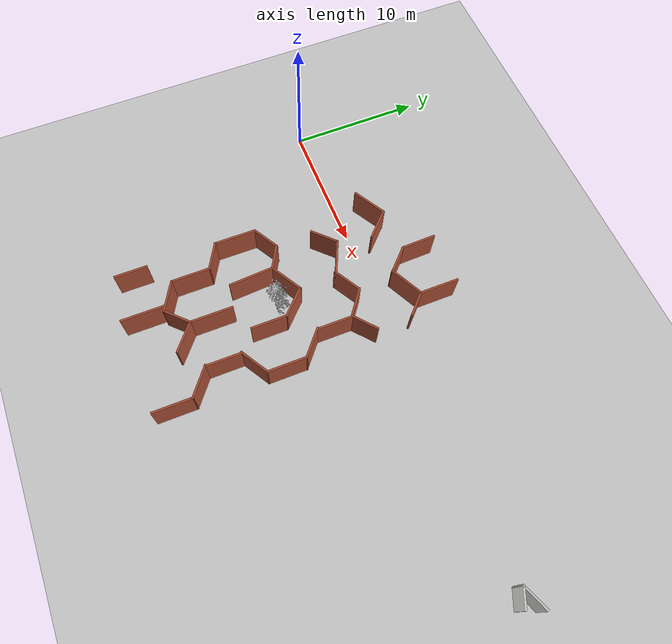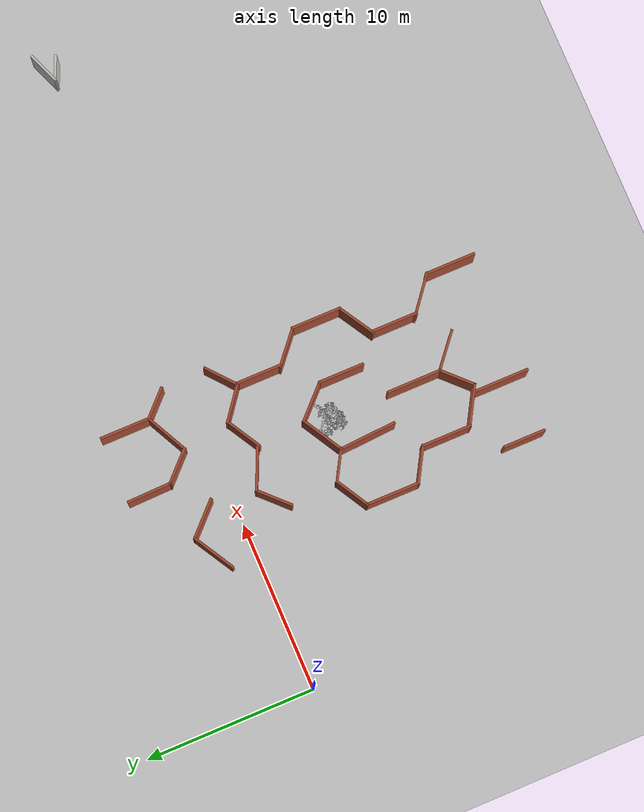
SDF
<sdf version="1.6">
 <world name="default">
  <model name="maze_rect_3">
   <pose>4e-06 -9.9e-05 0 0 -0 1.57001</pose>
   <link name="Wall_1">
    <collision name="Wall_1_Collision">
     <geometry><box><size>2.18043 0.15 2.5</size></box></geometry>
     <pose>0 0 1.25 0 -0 0</pose>
    </collision>
    <visual name="Wall_1_Visual">
     <pose>0 0 1.25 0 -0 0</pose>
     <geometry><box><size>2.18043 0.15 2.5</size></box></geometry>
     <material>
      <script><uri>file://media/materials/scripts/gazebo.material</uri><name>Gazebo/Bricks</name></script>
      <ambient>1 1 1 1</ambient>
     </material>
     <meta><layer>0</layer></meta>
    </visual>
    <pose>-2.02099 -17.9406 0 0 -0 2.27087</pose>
   </link>
   <link name="Wall_166">
    <collision name="Wall_166_Collision">
     <geometry><box><size>3 0.15 2.5</size></box></geometry>
     <pose>0 0 1.25 0 -0 0</pose>
    </collision>
    <visual name="Wall_166_Visual">
     <pose>0 0 1.25 0 -0 0</pose>
     <geometry><box><size>3 0.15 2.5</size></box></geometry>
     <material>
      <script><uri>file://media/materials/scripts/gazebo.material</uri><name>Gazebo/Bricks</name></script>
      <ambient>1 1 1 1</ambient>
     </material>
     <meta><layer>0</layer></meta>
    </visual>
    <pose>4.03974 -17.3162 0 0 -0 3.14159</pose>
   </link>
   <link name="Wall_167">
    <collision name="Wall_167_Collision">
     <geometry><box><size>2 0.15 2.5</size></box></geometry>
     <pose>0 0 1.25 0 -0 0</pose>
    </collision>
    <visual name="Wall_167_Visual">
     <pose>0 0 1.25 0 -0 0</pose>
     <geometry><box><size>2 0.15 2.5</size></box></geometry>
     <material>
      <script><uri>file://media/materials/scripts/gazebo.material</uri><name>Gazebo/Bricks</name></script>
      <ambient>1 1 1 1</ambient>
     </material>
     <meta><layer>0</layer></meta>
    </visual>
    <pose>1.96066 -17.9703 0 0 -0 -2.35619</pose>
   </link>
   <link name="Wall_184">
    <collision name="Wall_184_Collision">
     <geometry><box><size>2.66716 0.15 2.5</size></box></geometry>
     <pose>0 0 1.25 0 -0 0</pose>
    </collision>
    <visual name="Wall_184_Visual">
     <pose>0 0 1.25 0 -0 0</pose>
     <geometry><box><size>2.66716 0.15 2.5</size></box></geometry>
     <material>
      <script><uri>file://media/materials/scripts/gazebo.material</uri><name>Gazebo/Bricks</name></script>
      <ambient>1 1 1 1</ambient>
     </material>
     <meta><layer>0</layer></meta>
    </visual>
    <pose>4.18279 -13.4697 0 0 -0 -3.11875</pose>
   </link>
   <link name="Wall_185">
    <collision name="Wall_185_Collision">
     <geometry><box><size>2.25 0.15 2.5</size></box></geometry>
     <pose>0 0 1.25 0 -0 0</pose>
    </collision>
    <visual name="Wall_185_Visual">
     <pose>0 0 1.25 0 -0 0</pose>
     <geometry><box><size>2.25 0.15 2.5</size></box></geometry>
     <material>
      <script><uri>file://media/materials/scripts/gazebo.material</uri><name>Gazebo/Bricks</name></script>
      <ambient>1 1 1 1</ambient>
     </material>
     <meta><layer>0</layer></meta>
    </visual>
    <pose>2.18208 -14.241 0 0 -0 -2.35619</pose>
   </link>
   <link name="Wall_186">
    <collision name="Wall_186_Collision">
     <geometry><box><size>2.76205 0.15 2.5</size></box></geometry>
     <pose>0 0 1.25 0 -0 0</pose>
    </collision>
    <visual name="Wall_186_Visual">
     <pose>0 0 1.25 0 -0 0</pose>
     <geometry><box><size>2.76205 0.15 2.5</size></box></geometry>
     <material>
      <script><uri>file://media/materials/scripts/gazebo.material</uri><name>Gazebo/Bricks</name></script>
      <ambient>1 1 1 1</ambient>
     </material>
     <meta><layer>0</layer></meta>
    </visual>
    <pose>2.02718 -16.1498 0 0 -0 -1.10416</pose>
   </link>
   <link name="Wall_2">
    <collision name="Wall_2_Collision">
     <geometry><box><size>2.75 0.15 2.5</size></box></geometry>
     <pose>0 0 1.25 0 -0 0</pose>
    </collision>
    <visual name="Wall_2_Visual">
     <pose>0 0 1.25 0 -0 0</pose>
     <geometry><box><size>2.75 0.15 2.5</size></box></geometry>
     <material>
      <script><uri>file://media/materials/scripts/gazebo.material</uri><name>Gazebo/Bricks</name></script>
      <ambient>1 1 1 1</ambient>
     </material>
     <meta><layer>0</layer></meta>
    </visual>
    <pose>-3.97506 -17.2253 0 0 -0 3.14159</pose>
   </link>
   <link name="Wall_3">
    <collision name="Wall_3_Collision">
     <geometry><box><size>2.42962 0.15 2.5</size></box></geometry>
     <pose>0 0 1.25 0 -0 0</pose>
    </collision>
    <visual name="Wall_3_Visual">
     <pose>0 0 1.25 0 -0 0</pose>
     <geometry><box><size>2.42962 0.15 2.5</size></box></geometry>
     <material>
      <script><uri>file://media/materials/scripts/gazebo.material</uri><name>Gazebo/Bricks</name></script>
      <ambient>1 1 1 1</ambient>
     </material>
     <meta><layer>0</layer></meta>
    </visual>
    <pose>-6.01752 -18.0289 0 0 -0 -2.28021</pose>
   </link>
   <link name="Wall_388">
    <collision name="Wall_388_Collision">
     <geometry><box><size>2.5 0.15 2.5</size></box></geometry>
     <pose>0 0 1.25 0 -0 0</pose>
    </collision>
    <visual name="Wall_388_Visual">
     <pose>0 0 1.25 0 -0 0</pose>
     <geometry><box><size>2.5 0.15 2.5</size></box></geometry>
     <material>
      <script><uri>file://media/materials/scripts/gazebo.material</uri><name>Gazebo/Bricks</name></script>
      <ambient>1 1 1 1</ambient>
     </material>
     <meta><layer>0</layer></meta>
    </visual>
    <pose>2.01144 -10.9743 0 0 -0 0.785398</pose>
   </link>
   <link name="Wall_389">
    <collision name="Wall_389_Collision">
     <geometry><box><size>2.75 0.15 2.5</size></box></geometry>
     <pose>0 0 1.25 0 -0 0</pose>
    </collision>
    <visual name="Wall_389_Visual">
     <pose>0 0 1.25 0 -0 0</pose>
     <geometry><box><size>2.75 0.15 2.5</size></box></geometry>
     <material>
      <script><uri>file://media/materials/scripts/gazebo.material</uri><name>Gazebo/Bricks</name></script>
      <ambient>1 1 1 1</ambient>
     </material>
     <meta><layer>0</layer></meta>
    </visual>
    <pose>2.1923 -9.01765 0 0 -0 2.0944</pose>
   </link>
   <link name="Wall_4">
    <collision name="Wall_4_Collision">
     <geometry><box><size>3 0.15 2.5</size></box></geometry>
     <pose>0 0 1.25 0 -0 0</pose>
    </collision>
    <visual name="Wall_4_Visual">
     <pose>0 0 1.25 0 -0 0</pose>
     <geometry><box><size>3 0.15 2.5</size></box></geometry>
     <material>
      <script><uri>file://media/materials/scripts/gazebo.material</uri><name>Gazebo/Bricks</name></script>
      <ambient>1 1 1 1</ambient>
     </material>
     <meta><layer>0</layer></meta>
    </visual>
    <pose>-8.18499 -18.8938 0 0 -0 3.14159</pose>
   </link>
   <link name="Wall_436">
    <collision name="Wall_436_Collision">
     <geometry><box><size>2.25 0.15 2.5</size></box></geometry>
     <pose>0 0 1.25 0 -0 0</pose>
    </collision>
    <visual name="Wall_436_Visual">
     <pose>0 0 1.25 0 -0 0</pose>
     <geometry><box><size>2.25 0.15 2.5</size></box></geometry>
     <material>
      <script><uri>file://media/materials/scripts/gazebo.material</uri><name>Gazebo/Bricks</name></script>
      <ambient>1 1 1 1</ambient>
     </material>
     <meta><layer>0</layer></meta>
    </visual>
    <pose>-2.08521 -10.5143 0 0 -0 -0.785398</pose>
   </link>
   <link name="Wall_437">
    <collision name="Wall_437_Collision">
     <geometry><box><size>2.71683 0.15 2.5</size></box></geometry>
     <pose>0 0 1.25 0 -0 0</pose>
    </collision>
    <visual name="Wall_437_Visual">
     <pose>0 0 1.25 0 -0 0</pose>
     <geometry><box><size>2.71683 0.15 2.5</size></box></geometry>
     <material>
      <script><uri>file://media/materials/scripts/gazebo.material</uri><name>Gazebo/Bricks</name></script>
      <ambient>1 1 1 1</ambient>
     </material>
     <meta><layer>0</layer></meta>
    </visual>
    <pose>-1.86907 -12.4273 0 0 -0 -1.99335</pose>
   </link>
   <link name="Wall_438">
    <collision name="Wall_438_Collision">
     <geometry><box><size>2.25 0.15 2.5</size></box></geometry>
     <pose>0 0 1.25 0 -0 0</pose>
    </collision>
    <visual name="Wall_438_Visual">
     <pose>0 0 1.25 0 -0 0</pose>
     <geometry><box><size>2.25 0.15 2.5</size></box></geometry>
     <material>
      <script><uri>file://media/materials/scripts/gazebo.material</uri><name>Gazebo/Bricks</name></script>
      <ambient>1 1 1 1</ambient>
     </material>
     <meta><layer>0</layer></meta>
    </visual>
    <pose>-1.93157 -14.446 0 0 -0 -1.0472</pose>
   </link>
   <link name="Wall_439">
    <collision name="Wall_439_Collision">
     <geometry><box><size>2.34599 0.15 2.5</size></box></geometry>
     <pose>0 0 1.25 0 -0 0</pose>
    </collision>
    <visual name="Wall_439_Visual">
     <pose>0 0 1.25 0 -0 0</pose>
     <geometry><box><size>2.34599 0.15 2.5</size></box></geometry>
     <material>
      <script><uri>file://media/materials/scripts/gazebo.material</uri><name>Gazebo/Bricks</name></script>
      <ambient>1 1 1 1</ambient>
     </material>
     <meta><layer>0</layer></meta>
    </visual>
    <pose>-2.01023 -16.2903 0 0 -0 -2.22119</pose>
   </link>
   <link name="Wall_441">
    <collision name="Wall_441_Collision">
     <geometry><box><size>2.75 0.15 2.5</size></box></geometry>
     <pose>0 0 1.25 0 -0 0</pose>
    </collision>
    <visual name="Wall_441_Visual">
     <pose>0 0 1.25 0 -0 0</pose>
     <geometry><box><size>2.75 0.15 2.5</size></box></geometry>
     <material>
      <script><uri>file://media/materials/scripts/gazebo.material</uri><name>Gazebo/Bricks</name></script>
      <ambient>1 1 1 1</ambient>
     </material>
     <meta><layer>0</layer></meta>
    </visual>
    <pose>-8.24597 -15.485 0 0 -0 0</pose>
   </link>
   <link name="Wall_442">
    <collision name="Wall_442_Collision">
     <geometry><box><size>2.5 0.15 2.5</size></box></geometry>
     <pose>0 0 1.25 0 -0 0</pose>
    </collision>
    <visual name="Wall_442_Visual">
     <pose>0 0 1.25 0 -0 0</pose>
     <geometry><box><size>2.5 0.15 2.5</size></box></geometry>
     <material>
      <script><uri>file://media/materials/scripts/gazebo.material</uri><name>Gazebo/Bricks</name></script>
      <ambient>1 1 1 1</ambient>
     </material>
     <meta><layer>0</layer></meta>
    </visual>
    <pose>-6.11512 -14.6542 0 0 -0 0.785398</pose>
   </link>
   <link name="Wall_443">
    <collision name="Wall_443_Collision">
     <geometry><box><size>2.75 0.15 2.5</size></box></geometry>
     <pose>0 0 1.25 0 -0 0</pose>
    </collision>
    <visual name="Wall_443_Visual">
     <pose>0 0 1.25 0 -0 0</pose>
     <geometry><box><size>2.75 0.15 2.5</size></box></geometry>
     <material>
      <script><uri>file://media/materials/scripts/gazebo.material</uri><name>Gazebo/Bricks</name></script>
      <ambient>1 1 1 1</ambient>
     </material>
     <meta><layer>0</layer></meta>
    </visual>
    <pose>-5.93427 -12.6975 0 0 -0 2.0944</pose>
   </link>
   <link name="Wall_444">
    <collision name="Wall_444_Collision">
     <geometry><box><size>2 0.15 2.5</size></box></geometry>
     <pose>0 0 1.25 0 -0 0</pose>
    </collision>
    <visual name="Wall_444_Visual">
     <pose>0 0 1.25 0 -0 0</pose>
     <geometry><box><size>2 0.15 2.5</size></box></geometry>
     <material>
      <script><uri>file://media/materials/scripts/gazebo.material</uri><name>Gazebo/Bricks</name></script>
      <ambient>1 1 1 1</ambient>
     </material>
     <meta><layer>0</layer></meta>
    </visual>
    <pose>-6.12177 -10.7706 0 0 -0 1.0472</pose>
   </link>
   <link name="Wall_445">
    <collision name="Wall_445_Collision">
     <geometry><box><size>2.25 0.15 2.5</size></box></geometry>
     <pose>0 0 1.25 0 -0 0</pose>
    </collision>
    <visual name="Wall_445_Visual">
     <pose>0 0 1.25 0 -0 0</pose>
     <geometry><box><size>2.25 0.15 2.5</size></box></geometry>
     <material>
      <script><uri>file://media/materials/scripts/gazebo.material</uri><name>Gazebo/Bricks</name></script>
      <ambient>1 1 1 1</ambient>
     </material>
     <meta><layer>0</layer></meta>
    </visual>
    <pose>-6.18427 -9.06018 0 0 -0 2.0944</pose>
   </link>
   <link name="Wall_451">
    <collision name="Wall_451_Collision">
     <geometry><box><size>3.25 0.15 2.5</size></box></geometry>
     <pose>0 0 1.25 0 -0 0</pose>
    </collision>
    <visual name="Wall_451_Visual">
     <pose>0 0 1.25 0 -0 0</pose>
     <geometry><box><size>3.25 0.15 2.5</size></box></geometry>
     <material>
      <script><uri>file://media/materials/scripts/gazebo.material</uri><name>Gazebo/Bricks</name></script>
      <ambient>1 1 1 1</ambient>
     </material>
     <meta><layer>0</layer></meta>
    </visual>
    <pose>-11.8366 -13.4748 0 0 -0 3.14159</pose>
   </link>
   <link name="Wall_452">
    <collision name="Wall_452_Collision">
     <geometry><box><size>2.25 0.15 2.5</size></box></geometry>
     <pose>0 0 1.25 0 -0 0</pose>
    </collision>
    <visual name="Wall_452_Visual">
     <pose>0 0 1.25 0 -0 0</pose>
     <geometry><box><size>2.25 0.15 2.5</size></box></geometry>
     <material>
      <script><uri>file://media/materials/scripts/gazebo.material</uri><name>Gazebo/Bricks</name></script>
      <ambient>1 1 1 1</ambient>
     </material>
     <meta><layer>0</layer></meta>
    </visual>
    <pose>-14.129 -12.7324 0 0 -0 2.35619</pose>
   </link>
   <link name="Wall_453">
    <collision name="Wall_453_Collision">
     <geometry><box><size>2.5 0.15 2.5</size></box></geometry>
     <pose>0 0 1.25 0 -0 0</pose>
    </collision>
    <visual name="Wall_453_Visual">
     <pose>0 0 1.25 0 -0 0</pose>
     <geometry><box><size>2.5 0.15 2.5</size></box></geometry>
     <material>
      <script><uri>file://media/materials/scripts/gazebo.material</uri><name>Gazebo/Bricks</name></script>
      <ambient>1 1 1 1</ambient>
     </material>
     <meta><layer>0</layer></meta>
    </visual>
    <pose>-14.284 -10.9723 0 0 -0 1.0472</pose>
   </link>
   <link name="Wall_454">
    <collision name="Wall_454_Collision">
     <geometry><box><size>3 0.15 2.5</size></box></geometry>
     <pose>0 0 1.25 0 -0 0</pose>
    </collision>
    <visual name="Wall_454_Visual">
     <pose>0 0 1.25 0 -0 0</pose>
     <geometry><box><size>3 0.15 2.5</size></box></geometry>
     <material>
      <script><uri>file://media/materials/scripts/gazebo.material</uri><name>Gazebo/Bricks</name></script>
      <ambient>1 1 1 1</ambient>
     </material>
     <meta><layer>0</layer></meta>
    </visual>
    <pose>-12.2715 -9.95474 0 0 -0 0</pose>
   </link>
   <link name="Wall_455">
    <collision name="Wall_455_Collision">
     <geometry><box><size>2.25 0.15 2.5</size></box></geometry>
     <pose>0 0 1.25 0 -0 0</pose>
    </collision>
    <visual name="Wall_455_Visual">
     <pose>0 0 1.25 0 -0 0</pose>
     <geometry><box><size>2.25 0.15 2.5</size></box></geometry>
     <material>
      <script><uri>file://media/materials/scripts/gazebo.material</uri><name>Gazebo/Bricks</name></script>
      <ambient>1 1 1 1</ambient>
     </material>
     <meta><layer>0</layer></meta>
    </visual>
    <pose>-10.3215 -9.04542 0 0 -0 1.0472</pose>
   </link>
   <link name="Wall_456">
    <collision name="Wall_456_Collision">
     <geometry><box><size>3.23726 0.15 2.5</size></box></geometry>
     <pose>0 0 1.25 0 -0 0</pose>
    </collision>
    <visual name="Wall_456_Visual">
     <pose>0 0 1.25 0 -0 0</pose>
     <geometry><box><size>3.23726 0.15 2.5</size></box></geometry>
     <material>
      <script><uri>file://media/materials/scripts/gazebo.material</uri><name>Gazebo/Bricks</name></script>
      <ambient>1 1 1 1</ambient>
     </material>
     <meta><layer>0</layer></meta>
    </visual>
    <pose>-8.25289 -8.14347 0 0 -0 -0.004784</pose>
   </link>
   <link name="Wall_458">
    <collision name="Wall_458_Collision">
     <geometry><box><size>2.49347 0.15 2.5</size></box></geometry>
     <pose>0 0 1.25 0 -0 0</pose>
    </collision>
    <visual name="Wall_458_Visual">
     <pose>0 0 1.25 0 -0 0</pose>
     <geometry><box><size>2.49347 0.15 2.5</size></box></geometry>
     <material>
      <script><uri>file://media/materials/scripts/gazebo.material</uri><name>Gazebo/Bricks</name></script>
      <ambient>1 1 1 1</ambient>
     </material>
     <meta><layer>0</layer></meta>
    </visual>
    <pose>-14.1377 -14.3741 0 0 -0 0.874922</pose>
   </link>
   <link name="Wall_460">
    <collision name="Wall_460_Collision">
     <geometry><box><size>3.25 0.15 2.5</size></box></geometry>
     <pose>0 0 1.25 0 -0 0</pose>
    </collision>
    <visual name="Wall_460_Visual">
     <pose>0 0 1.25 0 -0 0</pose>
     <geometry><box><size>3.25 0.15 2.5</size></box></geometry>
     <material>
      <script><uri>file://media/materials/scripts/gazebo.material</uri><name>Gazebo/Bricks</name></script>
      <ambient>1 1 1 1</ambient>
     </material>
     <meta><layer>0</layer></meta>
    </visual>
    <pose>-16.3331 -11.6233 0 0 -0 3.14159</pose>
   </link>
   <link name="Wall_467">
    <collision name="Wall_467_Collision">
     <geometry><box><size>2.5 0.15 2.5</size></box></geometry>
     <pose>0 0 1.25 0 -0 0</pose>
    </collision>
    <visual name="Wall_467_Visual">
     <pose>0 0 1.25 0 -0 0</pose>
     <geometry><box><size>2.5 0.15 2.5</size></box></geometry>
     <material>
      <script><uri>file://media/materials/scripts/gazebo.material</uri><name>Gazebo/Bricks</name></script>
      <ambient>1 1 1 1</ambient>
     </material>
     <meta><layer>0</layer></meta>
    </visual>
    <pose>-16.2132 -8.12307 0 0 -0 0</pose>
   </link>
   <link name="Wall_5">
    <collision name="Wall_5_Collision">
     <geometry><box><size>2.45889 0.15 2.5</size></box></geometry>
     <pose>0 0 1.25 0 -0 0</pose>
    </collision>
    <visual name="Wall_5_Visual">
     <pose>0 0 1.25 0 -0 0</pose>
     <geometry><box><size>2.45889 0.15 2.5</size></box></geometry>
     <material>
      <script><uri>file://media/materials/scripts/gazebo.material</uri><name>Gazebo/Bricks</name></script>
      <ambient>1 1 1 1</ambient>
     </material>
     <meta><layer>0</layer></meta>
    </visual>
    <pose>-10.2029 -17.9032 0 0 -0 2.11014</pose>
   </link>
   <link name="Wall_521">
    <collision name="Wall_521_Collision">
     <geometry><box><size>3.43024 0.15 2.5</size></box></geometry>
     <pose>0 0 1.25 0 -0 0</pose>
    </collision>
    <visual name="Wall_521_Visual">
     <pose>0 0 1.25 0 -0 0</pose>
     <geometry><box><size>3.43024 0.15 2.5</size></box></geometry>
     <material>
      <script><uri>file://media/materials/scripts/gazebo.material</uri><name>Gazebo/Bricks</name></script>
      <ambient>1 1 1 1</ambient>
     </material>
     <meta><layer>0</layer></meta>
    </visual>
    <pose>-8.22158 -11.6677 0 0 -0 0.05859</pose>
   </link>
   <link name="Wall_6">
    <collision name="Wall_6_Collision">
     <geometry><box><size>2.75 0.15 2.5</size></box></geometry>
     <pose>0 0 1.25 0 -0 0</pose>
    </collision>
    <visual name="Wall_6_Visual">
     <pose>0 0 1.25 0 -0 0</pose>
     <geometry><box><size>2.75 0.15 2.5</size></box></geometry>
     <material>
      <script><uri>file://media/materials/scripts/gazebo.material</uri><name>Gazebo/Bricks</name></script>
      <ambient>1 1 1 1</ambient>
     </material>
     <meta><layer>0</layer></meta>
    </visual>
    <pose>-12.157 -16.9738 0 0 -0 3.14159</pose>
   </link>
   <link name="Wall_7">
    <collision name="Wall_7_Collision">
     <geometry><box><size>2.56672 0.15 2.5</size></box></geometry>
     <pose>0 0 1.25 0 -0 0</pose>
    </collision>
    <visual name="Wall_7_Visual">
     <pose>0 0 1.25 0 -0 0</pose>
     <geometry><box><size>2.56672 0.15 2.5</size></box></geometry>
     <material>
      <script><uri>file://media/materials/scripts/gazebo.material</uri><name>Gazebo/Bricks</name></script>
      <ambient>1 1 1 1</ambient>
     </material>
     <meta><layer>0</layer></meta>
    </visual>
    <pose>-14.1451 -17.8606 0 0 -0 -2.23971</pose>
   </link>
   <link name="Wall_8">
    <collision name="Wall_8_Collision">
     <geometry><box><size>3 0.15 2.5</size></box></geometry>
     <pose>0 0 1.25 0 -0 0</pose>
    </collision>
    <visual name="Wall_8_Visual">
     <pose>0 0 1.25 0 -0 0</pose>
     <geometry><box><size>3 0.15 2.5</size></box></geometry>
     <material>
      <script><uri>file://media/materials/scripts/gazebo.material</uri><name>Gazebo/Bricks</name></script>
      <ambient>1 1 1 1</ambient>
     </material>
     <meta><layer>0</layer></meta>
    </visual>
    <pose>-16.3195 -18.8085 0 0 -0 3.14159</pose>
   </link>
   <static>1</static>
  </model>
  <model name="tree_2m*2m_26">
   <link name="link_0">
    <inertial>
     <mass>1</mass>
     <inertia>
      <ixx>0.166667</ixx>
      <ixy>0</ixy>
      <ixz>0</ixz>
      <iyy>0.166667</iyy>
      <iyz>0</iyz>
      <izz>0.166667</izz>
     </inertia>
    </inertial>
    <pose>-0 -0 -0 1.60763 -0 0</pose>
    <visual name="visual">
     <geometry><mesh><uri>model://tree_2m*2m/needle01.obj</uri><scale>1 1 1</scale></mesh></geometry>
    </visual>
    <collision name="collision">
     <geometry><mesh><uri>model://tree_2m*2m/needle01.obj</uri><scale>1 1 1</scale></mesh></geometry>
     <surface>
      <friction>
       <ode><mu>1</mu><mu2>1</mu2><fdir1>0 0 0</fdir1><slip1>0</slip1><slip2>0</slip2></ode>
       <torsional>
        <coefficient>1</coefficient>
        <patch_radius>0</patch_radius>
        <surface_radius>0</surface_radius>
        <use_patch_radius>1</use_patch_radius>
        <ode><slip>0</slip></ode>
       </torsional>
      </friction>
      <bounce><restitution_coefficient>0</restitution_coefficient><threshold>1e+06</threshold></bounce>
      <contact>
       <collide_without_contact>0</collide_without_contact>
       <collide_without_contact_bitmask>1</collide_without_contact_bitmask>
       <collide_bitmask>1</collide_bitmask>
       <ode>
        <soft_cfm>0</soft_cfm>
        <soft_erp>0.2</soft_erp>
        <kp>1e+13</kp>
        <kd>1</kd>
        <max_vel>0.01</max_vel>
        <min_depth>0</min_depth>
       </ode>
       <bullet>
        <split_impulse>1</split_impulse>
        <split_impulse_penetration_threshold>-0.01</split_impulse_penetration_threshold>
        <soft_cfm>0</soft_cfm>
        <soft_erp>0.2</soft_erp>
        <kp>1e+13</kp>
        <kd>1</kd>
       </bullet>
      </contact>
     </surface>
    </collision>
   </link>
   <static>1</static>
   <pose>13.5352 -6.85277 0 0 -0 0</pose>
  </model>
  <model name="v_wall_1_2">
   <pose>38.1079 0.355704 0 0 0 -1.98119</pose>
   <link name="Wall_0">
    <collision name="Wall_0_Collision">
     <geometry><box><size>2 0.15 2.5</size></box></geometry>
     <pose>0 0 1.25 0 -0 0</pose>
    </collision>
    <visual name="Wall_0_Visual">
     <pose>0 0 1.25 0 -0 0</pose>
     <geometry><box><size>2 0.15 2.5</size></box></geometry>
     <material>
      <script><uri>file://media/materials/scripts/gazebo.material</uri><name>Gazebo/CeilingTiled</name></script>
      <ambient>1 1 1 1</ambient>
     </material>
     <meta><layer>0</layer></meta>
    </visual>
    <pose>0 -0.005393 0 0 -0 -0.785398</pose>
   </link>
   <link name="Wall_1">
    <collision name="Wall_1_Collision">
     <geometry><box><size>1.5 0.15 2.5</size></box></geometry>
     <pose>0 0 1.25 0 -0 0</pose>
    </collision>
    <visual name="Wall_1_Visual">
     <pose>0 0 1.25 0 -0 0</pose>
     <geometry><box><size>1.5 0.15 2.5</size></box></geometry>
     <material>
      <script><uri>file://media/materials/scripts/gazebo.material</uri><name>Gazebo/CeilingTiled</name></script>
      <ambient>1 1 1 1</ambient>
     </material>
     <meta><layer>0</layer></meta>
    </visual>
    <pose>0.654074 0.015533 0 0 -0 1.5708</pose>
   </link>
   <static>1</static>
  </model>
  <model name="ground_plane">
   <static>1</static>
   <link name="link">
    <collision name="collision">
     <geometry><plane><normal>0 0 1</normal><size>100 100</size></plane></geometry>
     <surface>
      <contact><collide_bitmask>65535</collide_bitmask></contact>
      <friction><ode><mu>100</mu><mu2>50</mu2></ode></friction>
     </surface>
    </collision>
    <visual name="visual">
     <cast_shadows>0</cast_shadows>
     <geometry><plane><normal>0 0 1</normal><size>100 100</size></plane></geometry>
     <material>
      <script><uri>file://media/materials/scripts/gazebo.material</uri><name>Gazebo/Grey</name></script>
     </material>
    </visual>
   </link>
   <pose>9.31394 52.073 0 0 -0 0</pose>
  </model>
 </world>
</sdf>
